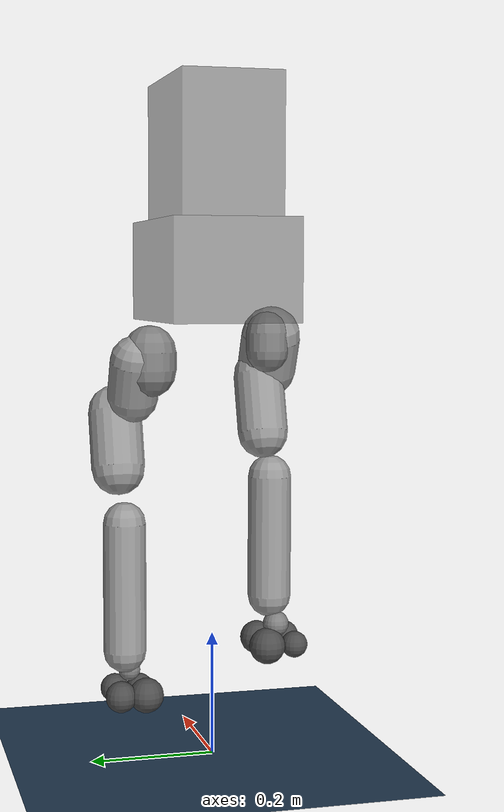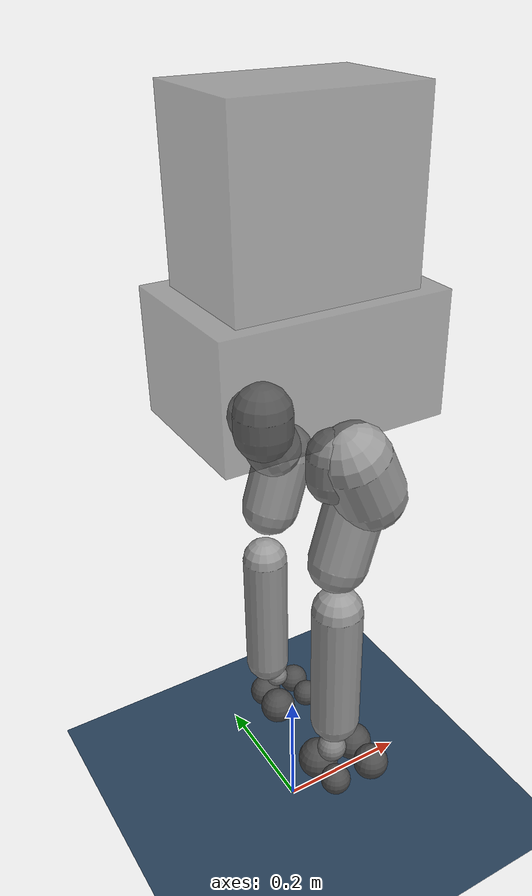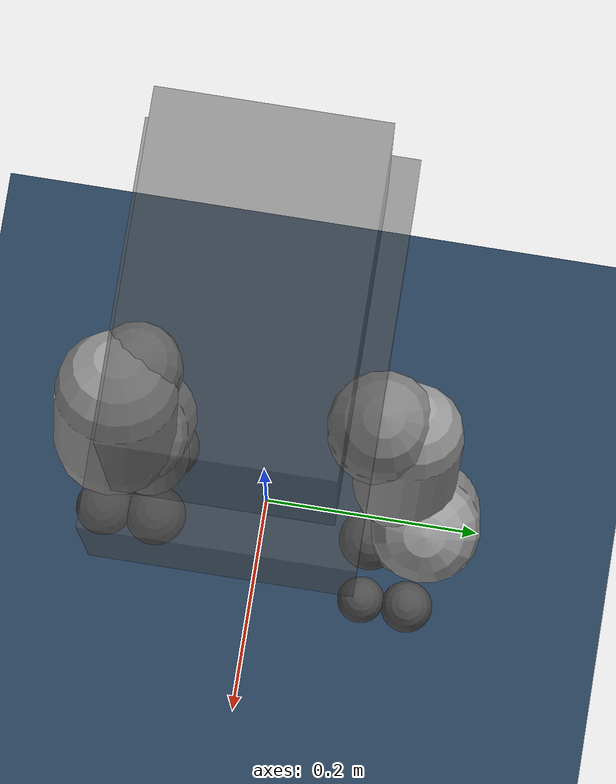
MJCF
<?xml version='1.0' encoding='UTF-8'?>
<mujoco model="g1_12dof">
  <compiler angle="degree" />
  <option timestep="0.002" integrator="RK4" />
  <default>
    <joint damping="0.72" armature="0.01" frictionloss="0.098" limited="true" />
    <geom conaffinity="1" condim="3" contype="1" friction="0.63 0.15 0.18" />
    <motor ctrllimited="true" ctrlrange="-1 1" />
  </default>
  <asset>
    <texture type="skybox" builtin="gradient" rgb1="0.3 0.5 0.7" rgb2="0.0 0.0 0.0" width="512" height="512" />
    <texture name="texplane" type="2d" builtin="checker" rgb1="0.2 0.3 0.4" rgb2="0.1 0.2 0.3" width="512" height="512" mark="cross" markrgb="1 1 1" />
    <material name="matplane" reflectance="0.3" texture="texplane" texrepeat="1 1" texuniform="true" />
  </asset>
  <worldbody>
    <light cutoff="100" diffuse="1 1 1" dir="-1 0 -1.5" directional="true" exponent="1" pos="0 0 1.3" specular="0.1 0.1 0.1" />
    <geom name="floor" pos="0 0 0" size="40 40 0.125" type="plane" material="matplane" condim="3" />
    <body name="pelvis" pos="0.005512 -0.002861 0.785328">
      <inertial pos="0.0144905 0.000151462 0.144068" quat="0.999881 -0.000505543 -0.0154276 0.000328408" mass="8.858624" diaginertia="0.21905723 0.17996743 0.08392630" />
      <freejoint name="root" />
      <geom name="pelvis_geom" type="box" size="0.15 0.1 0.08" pos="0 0 0" rgba="0.3 0.3 0.3 0.5" />
      <geom name="torso_geom" type="box" size="0.12 0.08 0.15" pos="0 0 0.15" rgba="0.3 0.3 0.3 0.5" />
      <body name="left_hip_pitch_link" pos="0.010944 0.080491 -0.121809">
        <inertial pos="0.002741 0.047791 -0.02606" quat="0.954862 0.293964 0.0302556 0.030122" mass="0.628056" diaginertia="0.00065434 0.00055306 0.00041893" />
        <joint name="left_hip_pitch_joint" pos="0 0 0" axis="0 1 0" range="-144.8 165.2" damping="0.79" armature="0.01" frictionloss="0.098" />
        <geom name="left_hip_pitch_geom" type="capsule" fromto="0.000000 0.021877 -0.007292 0.000000 0.021877 -0.036461" size="0.042985" rgba="0.5 0.5 0.5 1" />
        <body name="left_hip_roll_link" pos="0.001291 0.044181 -0.021385" quat="0.996179 0 -0.0873386 0">
          <inertial pos="0.029812 -0.001045 -0.087934" quat="0.977808 -1.97119e-05 0.205576 -0.0403793" mass="1.084455" diaginertia="0.00162557 0.00153749 0.00094834" />
          <joint name="left_hip_roll_joint" pos="0 0 0" axis="1 0 0" range="-32.3 173.7" damping="0.38" armature="0.01" frictionloss="0.053" />
          <geom name="left_hip_roll_geom" type="capsule" fromto="0.000000 0.000000 0.000000 0.015875 0.000000 -0.063501" size="0.041120" rgba="0.6 0.6 0.6 1" />
          <body name="left_hip_yaw_link" pos="0.043071 0.022847 -0.094554">
            <inertial pos="-0.057709 -0.010981 -0.15078" quat="0.600598 0.15832 0.223482 0.751181" mass="1.231243" diaginertia="0.00504042 0.00465993 0.00103994" />
            <joint name="left_hip_yaw_joint" pos="0 0 0" axis="0 0 1" range="-154.6 158.1" damping="0.36" armature="0.01" frictionloss="0.063" />
            <geom name="left_hip_yaw_geom" type="capsule" fromto="0.000000 0.000000 0.000000 -0.041457 0.000000 -0.082914" size="0.043573" rgba="0.6 0.6 0.6 1" />
            <body name="left_knee_link" pos="-0.072299 -0.006752 -0.167435" quat="0.996179 0 0.0873386 0">
              <inertial pos="0.005457 0.003964 -0.12074" quat="0.923418 -0.0327699 0.0158246 0.382067" mass="1.256286" diaginertia="0.00641110 0.00635330 0.00082506" />
              <joint name="left_knee_joint" pos="0 0 0" axis="0 1 0" range="-5.9 167.1" damping="0.33" armature="0.01" frictionloss="0.073" />
              <geom name="left_knee_geom" type="capsule" fromto="0.000000 0.000000 0.000000 0.000000 0.000000 -0.209034" size="0.034895" rgba="0.6 0.6 0.6 1" />
              <body name="left_ankle_pitch_link" pos="0.011743 -0.009593 -0.243944">
                <inertial pos="-0.007269 0 0.011137" quat="0.603053 0.369225 0.369225 0.603053" mass="0.047482" diaginertia="0.00001046 0.00000779 0.00000383" />
                <joint name="left_ankle_pitch_joint" pos="0 0 0" axis="0 1 0" range="-54.8 28.9" damping="0.36" armature="0.005" frictionloss="0.057" />
                <geom name="left_ankle_pitch_geom" type="sphere" size="0.017942" pos="0.000000 0.000000 0.000000" rgba="0.5 0.5 0.5 1" />
                <body name="left_ankle_roll_link" pos="0.007650 -0.004720 -0.020599">
                  <inertial pos="0.026505 0 -0.016425" quat="-0.000481092 0.728482 -0.000618967 0.685065" mass="0.458603" diaginertia="0.00114814 0.00110963 0.00014942" />
                  <joint name="left_ankle_roll_joint" pos="0 0 0" axis="1 0 0" range="-12.1 17.2" damping="0.40" armature="0.005" frictionloss="0.046" />
                  <geom name="left_foot_1" type="sphere" size="0.023601" pos="0.035082 0.021049 -0.021049" rgba="0.3 0.3 0.3 1" />
                  <geom name="left_foot_2" type="sphere" size="0.021460" pos="0.035082 -0.021049 -0.021049" rgba="0.3 0.3 0.3 1" />
                  <geom name="left_foot_3" type="sphere" size="0.025427" pos="-0.021049 0.021049 -0.021049" rgba="0.3 0.3 0.3 1" />
                  <geom name="left_foot_4" type="sphere" size="0.028571" pos="-0.021049 -0.021049 -0.021049" rgba="0.3 0.3 0.3 1" />
                </body>
              </body>
            </body>
          </body>
        </body>
      </body>
      <body name="right_hip_pitch_link" pos="-0.000713 -0.066838 -0.091924">
        <inertial pos="0.002741 -0.047791 -0.02606" quat="0.954862 -0.293964 0.0302556 -0.030122" mass="0.949923" diaginertia="0.00113603 0.00096020 0.00072732" />
        <joint name="right_hip_pitch_joint" pos="0 0 0" axis="0 1 0" range="-142.4 160.9" damping="0.64" armature="0.01" frictionloss="0.099" />
        <geom name="right_hip_pitch_geom" type="capsule" fromto="0.000000 -0.022201 -0.007400 0.000000 -0.022201 -0.037002" size="0.034154" rgba="0.5 0.5 0.5 1" />
        <body name="right_hip_roll_link" pos="0.021433 -0.034961 -0.013140" quat="0.996179 0 -0.0873386 0">
          <inertial pos="0.029812 0.001045 -0.087934" quat="0.977808 1.97119e-05 0.205576 0.0403793" mass="0.718112" diaginertia="0.00093824 0.00088740 0.00054736" />
          <joint name="right_hip_roll_joint" pos="0 0 0" axis="1 0 0" range="-167.6 31.3" damping="0.68" armature="0.01" frictionloss="0.077" />
          <geom name="right_hip_roll_geom" type="capsule" fromto="0.000000 0.000000 0.000000 0.014854 0.000000 -0.059417" size="0.047570" rgba="0.6 0.6 0.6 1" />
          <body name="right_hip_yaw_link" pos="0.007023 0.015429 -0.066460">
            <inertial pos="-0.057709 0.010981 -0.15078" quat="0.751181 0.223482 0.15832 0.600598" mass="0.783035" diaginertia="0.00275666 0.00254857 0.00056876" />
            <joint name="right_hip_yaw_joint" pos="0 0 0" axis="0 0 1" range="-157.5 161.7" damping="0.92" armature="0.01" frictionloss="0.086" />
            <geom name="right_hip_yaw_geom" type="capsule" fromto="0.000000 0.000000 0.000000 -0.043583 0.000000 -0.087167" size="0.040541" rgba="0.6 0.6 0.6 1" />
            <body name="right_knee_link" pos="-0.061755 -0.009908 -0.155976" quat="0.996179 0 0.0873386 0">
              <inertial pos="0.005457 -0.003964 -0.12074" quat="0.923439 0.0345276 0.0116333 -0.382012" mass="1.109493" diaginertia="0.00542921 0.00538639 0.00069907" />
              <joint name="right_knee_joint" pos="0 0 0" axis="0 1 0" range="-8.6 170.0" damping="0.59" armature="0.01" frictionloss="0.035" />
              <geom name="right_knee_geom" type="capsule" fromto="0.000000 0.000000 0.000000 0.000000 0.000000 -0.196723" size="0.034995" rgba="0.6 0.6 0.6 1" />
              <body name="right_ankle_pitch_link" pos="-0.009921 -0.008847 -0.242904">
                <inertial pos="-0.007269 0 0.011137" quat="0.603053 0.369225 0.369225 0.603053" mass="0.041004" diaginertia="0.00000860 0.00000641 0.00000315" />
                <joint name="right_ankle_pitch_joint" pos="0 0 0" axis="0 1 0" range="-48.5 25.3" damping="0.44" armature="0.005" frictionloss="0.092" />
                <geom name="right_ankle_pitch_geom" type="sphere" size="0.021017" pos="0.000000 0.000000 0.000000" rgba="0.5 0.5 0.5 1" />
                <body name="right_ankle_roll_link" pos="0.011940 -0.005445 -0.010707">
                  <inertial pos="0.026505 0 -0.016425" quat="0.000481092 0.728482 0.000618967 0.685065" mass="0.383213" diaginertia="0.00090365 0.00087334 0.00011760" />
                  <joint name="right_ankle_roll_joint" pos="0 0 0" axis="1 0 0" range="-18.3 12.3" damping="0.75" armature="0.005" frictionloss="0.091" />
                  <geom name="right_foot_1" type="sphere" size="0.027295" pos="0.038557 0.023134 -0.023134" rgba="0.3 0.3 0.3 1" />
                  <geom name="right_foot_2" type="sphere" size="0.025570" pos="0.038557 -0.023134 -0.023134" rgba="0.3 0.3 0.3 1" />
                  <geom name="right_foot_3" type="sphere" size="0.029424" pos="-0.023134 0.023134 -0.023134" rgba="0.3 0.3 0.3 1" />
                  <geom name="right_foot_4" type="sphere" size="0.021535" pos="-0.023134 -0.023134 -0.023134" rgba="0.3 0.3 0.3 1" />
                </body>
              </body>
            </body>
          </body>
        </body>
      </body>
    </body>
  </worldbody>
  <actuator>
    <motor name="left_hip_pitch_joint" joint="left_hip_pitch_joint" gear="66.7" />
    <motor name="left_hip_roll_joint" joint="left_hip_roll_joint" gear="65.5" />
    <motor name="left_hip_yaw_joint" joint="left_hip_yaw_joint" gear="56.1" />
    <motor name="left_knee_joint" joint="left_knee_joint" gear="58.0" />
    <motor name="left_ankle_pitch_joint" joint="left_ankle_pitch_joint" gear="33.1" />
    <motor name="left_ankle_roll_joint" joint="left_ankle_roll_joint" gear="27.3" />
    <motor name="right_hip_pitch_joint" joint="right_hip_pitch_joint" gear="63.2" />
    <motor name="right_hip_roll_joint" joint="right_hip_roll_joint" gear="56.2" />
    <motor name="right_hip_yaw_joint" joint="right_hip_yaw_joint" gear="52.1" />
    <motor name="right_knee_joint" joint="right_knee_joint" gear="61.0" />
    <motor name="right_ankle_pitch_joint" joint="right_ankle_pitch_joint" gear="22.6" />
    <motor name="right_ankle_roll_joint" joint="right_ankle_roll_joint" gear="36.4" />
  </actuator>
</mujoco>
